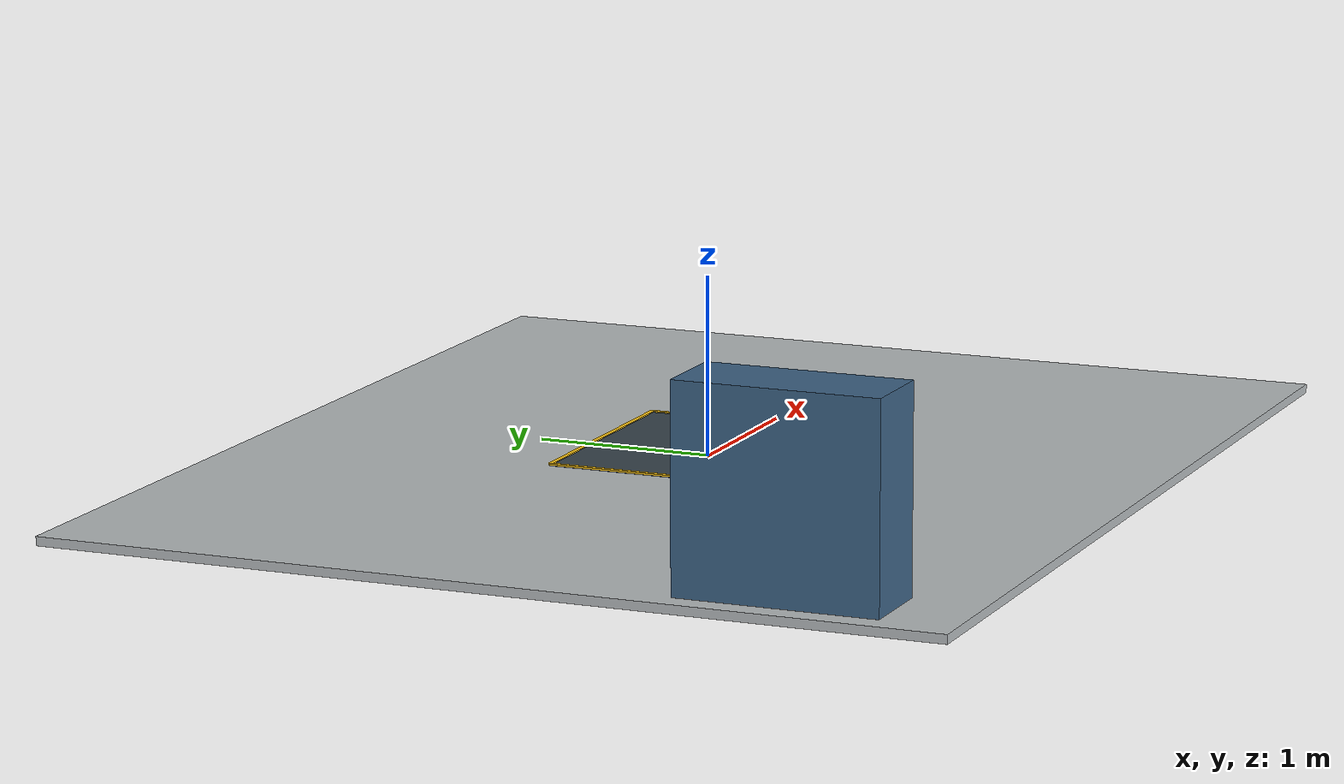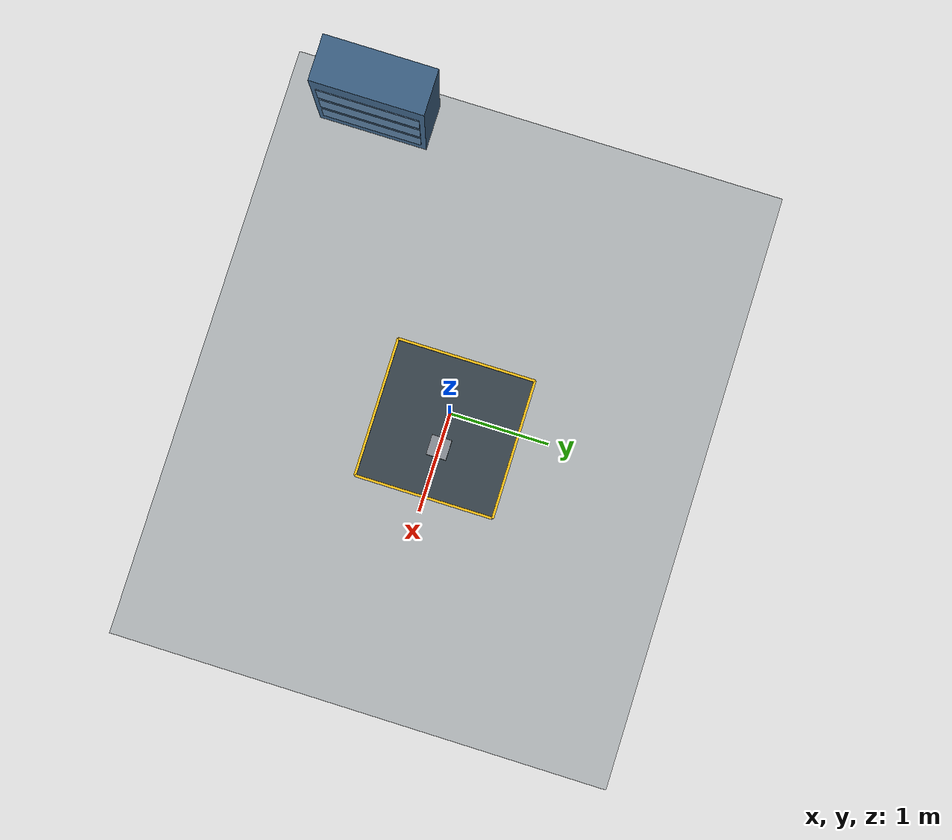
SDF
<?xml version="1.0"?>
<sdf version="1.10">
  <world name="rebot_b601">
    <physics name="physics" type="ignored">
      <max_step_size>0.002</max_step_size>
      <real_time_factor>1.0</real_time_factor>
    </physics>

    <plugin filename="gz-sim-physics-system" name="gz::sim::systems::Physics"/>
    <plugin filename="gz-sim-user-commands-system" name="gz::sim::systems::UserCommands"/>
    <plugin filename="gz-sim-scene-broadcaster-system" name="gz::sim::systems::SceneBroadcaster"/>

    <!-- 明亮的白天环境，替代原来的蓝灰色背景。 -->
    <scene>
      <ambient>0.65 0.65 0.62 1</ambient>
      <background>0.78 0.88 0.98 1</background>
      <shadows>true</shadows>
      <sky>
        <time>10</time>
        <sunrise>6</sunrise>
        <sunset>19</sunset>
        <clouds>
          <speed>0.15</speed>
          <direction>0.4</direction>
          <humidity>0.35</humidity>
          <mean_size>0.45</mean_size>
          <ambient>0.85 0.85 0.85 1</ambient>
        </clouds>
      </sky>
    </scene>

    <light name="sun" type="directional">
      <pose>-2 -3 6 0 0 0</pose>
      <cast_shadows>true</cast_shadows>
      <direction>0.35 0.25 -0.9</direction>
      <diffuse>0.92 0.90 0.84 1</diffuse>
      <specular>0.25 0.25 0.22 1</specular>
      <attenuation>
        <range>30</range>
        <constant>0.9</constant>
        <linear>0.01</linear>
        <quadratic>0.001</quadratic>
      </attenuation>
    </light>

    <!-- 室内顶灯，使机械臂背光面仍然清晰。 -->
    <light name="ceiling_light_left" type="point">
      <pose>0 -1.1 2.7 0 0 0</pose>
      <cast_shadows>false</cast_shadows>
      <diffuse>0.88 0.92 1.0 1</diffuse>
      <specular>0.15 0.15 0.15 1</specular>
      <attenuation><range>8</range><constant>0.4</constant><linear>0.12</linear><quadratic>0.02</quadratic></attenuation>
    </light>
    <light name="ceiling_light_right" type="point">
      <pose>0 1.1 2.7 0 0 0</pose>
      <cast_shadows>false</cast_shadows>
      <diffuse>0.88 0.92 1.0 1</diffuse>
      <specular>0.15 0.15 0.15 1</specular>
      <attenuation><range>8</range><constant>0.4</constant><linear>0.12</linear><quadratic>0.02</quadratic></attenuation>
    </light>

    <!-- 6 m x 5 m 的开放式机器人实验区，仅保留底部地面。 -->
    <model name="robot_lab_room">
      <static>true</static>
      <link name="room">
        <collision name="floor_collision">
          <pose>0 0 -0.025 0 0 0</pose>
          <geometry><box><size>6 5 0.05</size></box></geometry>
          <surface><friction><ode><mu>1.0</mu><mu2>1.0</mu2></ode></friction></surface>
        </collision>
        <visual name="floor_visual">
          <pose>0 0 -0.025 0 0 0</pose>
          <geometry><box><size>6 5 0.05</size></box></geometry>
          <material>
            <ambient>0.58 0.60 0.61 1</ambient>
            <diffuse>0.72 0.74 0.75 1</diffuse>
            <specular>0.08 0.08 0.08 1</specular>
          </material>
        </visual>

        <!-- 机器人安全工作区地垫，仅作视觉标识，不影响接触。 -->
        <visual name="safety_mat">
          <pose>0.15 0 0.004 0 0 0</pose>
          <geometry><box><size>1.4 1.4 0.008</size></box></geometry>
          <material><ambient>0.12 0.16 0.18 1</ambient><diffuse>0.22 0.27 0.30 1</diffuse></material>
        </visual>
        <visual name="safety_line_front">
          <pose>0.85 0 0.009 0 0 0</pose>
          <geometry><box><size>0.025 1.4 0.01</size></box></geometry>
          <material><ambient>0.95 0.70 0.05 1</ambient><diffuse>1.0 0.78 0.08 1</diffuse></material>
        </visual>
        <visual name="safety_line_back">
          <pose>-0.55 0 0.009 0 0 0</pose>
          <geometry><box><size>0.025 1.4 0.01</size></box></geometry>
          <material><ambient>0.95 0.70 0.05 1</ambient><diffuse>1.0 0.78 0.08 1</diffuse></material>
        </visual>
        <visual name="safety_line_left">
          <pose>0.15 0.7 0.009 0 0 0</pose>
          <geometry><box><size>1.4 0.025 0.01</size></box></geometry>
          <material><ambient>0.95 0.70 0.05 1</ambient><diffuse>1.0 0.78 0.08 1</diffuse></material>
        </visual>
        <visual name="safety_line_right">
          <pose>0.15 -0.7 0.009 0 0 0</pose>
          <geometry><box><size>1.4 0.025 0.01</size></box></geometry>
          <material><ambient>0.95 0.70 0.05 1</ambient><diffuse>1.0 0.78 0.08 1</diffuse></material>
        </visual>
      </link>
    </model>

    <!-- 后墙边的工具柜，为实验室提供尺度参照。 -->
    <model name="tool_cabinet">
      <static>true</static>
      <pose>-2.65 -1.55 0 0 0 0</pose>
      <link name="cabinet">
        <collision name="body_collision"><pose>0 0 0.55 0 0 0</pose><geometry><box><size>0.45 1.1 1.1</size></box></geometry></collision>
        <visual name="body_visual"><pose>0 0 0.55 0 0 0</pose><geometry><box><size>0.45 1.1 1.1</size></box></geometry><material><ambient>0.18 0.28 0.38 1</ambient><diffuse>0.24 0.39 0.53 1</diffuse></material></visual>
        <visual name="drawer_1"><pose>0.228 0 0.25 0 0 0</pose><geometry><box><size>0.012 1.0 0.22</size></box></geometry><material><ambient>0.28 0.39 0.50 1</ambient><diffuse>0.35 0.50 0.64 1</diffuse></material></visual>
        <visual name="drawer_2"><pose>0.228 0 0.52 0 0 0</pose><geometry><box><size>0.012 1.0 0.22</size></box></geometry><material><ambient>0.28 0.39 0.50 1</ambient><diffuse>0.35 0.50 0.64 1</diffuse></material></visual>
        <visual name="drawer_3"><pose>0.228 0 0.79 0 0 0</pose><geometry><box><size>0.012 1.0 0.22</size></box></geometry><material><ambient>0.28 0.39 0.50 1</ambient><diffuse>0.35 0.50 0.64 1</diffuse></material></visual>
      </link>
    </model>

    <!-- 原 MuJoCo 抓取台，位置和尺寸保持不变。 -->
    <model name="table">
      <static>true</static>
      <pose>0.35 0 0.05 0 0 0</pose>
      <link name="link">
        <collision name="collision">
          <geometry><box><size>0.2 0.2 0.1</size></box></geometry>
          <surface><friction><ode><mu>1.0</mu><mu2>1.0</mu2></ode></friction></surface>
        </collision>
        <visual name="visual">
          <geometry><box><size>0.2 0.2 0.1</size></box></geometry>
          <material><ambient>0.38 0.40 0.42 1</ambient><diffuse>0.55 0.57 0.60 1</diffuse><specular>0.15 0.15 0.15 1</specular></material>
        </visual>
      </link>
    </model>

    <!-- 原 MuJoCo 可抓取方块，质量和摩擦保持不变。 -->
    <model name="cube">
      <pose>0.35 0 0.115 0 0 0</pose>
      <link name="link">
        <inertial>
          <mass>0.1</mass>
          <inertia><ixx>0.000015</ixx><iyy>0.000015</iyy><izz>0.000015</izz></inertia>
        </inertial>
        <collision name="collision">
          <geometry><box><size>0.03 0.03 0.03</size></box></geometry>
          <surface><friction><ode><mu>2.0</mu><mu2>2.0</mu2></ode></friction></surface>
        </collision>
        <visual name="visual">
          <geometry><box><size>0.03 0.03 0.03</size></box></geometry>
          <material><ambient>0.95 0.28 0.04 1</ambient><diffuse>1.0 0.42 0.08 1</diffuse><specular>0.2 0.2 0.2 1</specular></material>
        </visual>
      </link>
    </model>
  </world>
</sdf>
